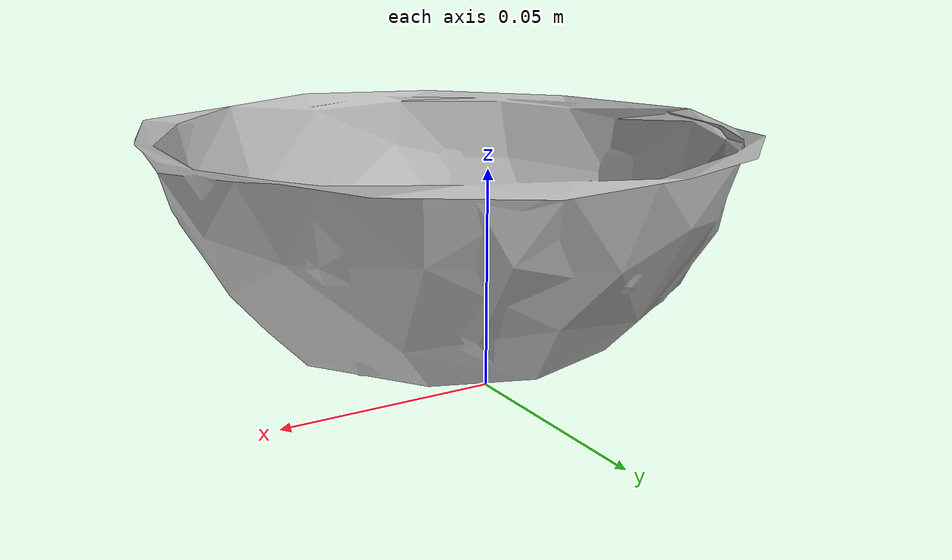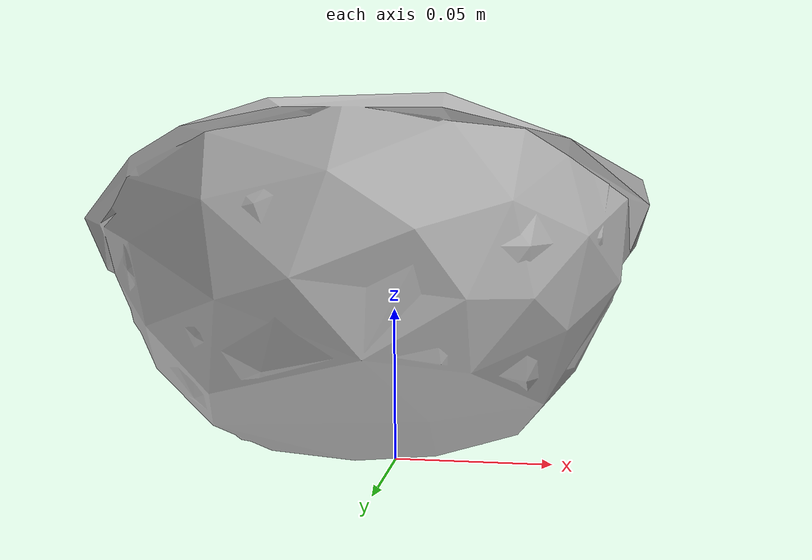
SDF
<?xml version='1.0'?>
<sdf version="1.4">
  <model name="024_bowl">
    <static>false</static>
    <link name="link">
      <inertial>
        <pose>-0.014741757681934628 -0.04373765486824201 0.0312927560881466 -1.4521905470269338 -1.5608455664878298 1.4652823072349552</pose>
        <mass>0.07490341764491669</mass>
        <inertia>
          <ixx>0.00017920898142460696</ixx>
          <ixy>2.911121647522019e-20</ixy>
          <ixz>-6.386784377724828e-22</ixz>
          <iyy>0.00010619687716041731</iyy>
          <iyz>3.1237213932856894e-22</iyz>
          <izz>0.00010598344033937154</izz>
        </inertia>
      </inertial>
      <collision name="collision">
        <geometry>
          <mesh>
            <!-- Use a downsampled mesh for collisions -->
            <uri>model:///024_bowl/024_bowl_250_collision.stl</uri>
	        </mesh>
        </geometry>
        <surface>
      </surface>
      </collision>
      <visual name="visual">
        <geometry>
          <mesh>
            <uri>model:///024_bowl/textured.obj</uri>
	        </mesh>
        </geometry>
        <material>
          <script>
            <uri>model:///024_bowl/024_bowl.material</uri>
            <name>024_bowl</name>
          </script>
        </material>
      </visual>
    </link>
  </model>
</sdf>
